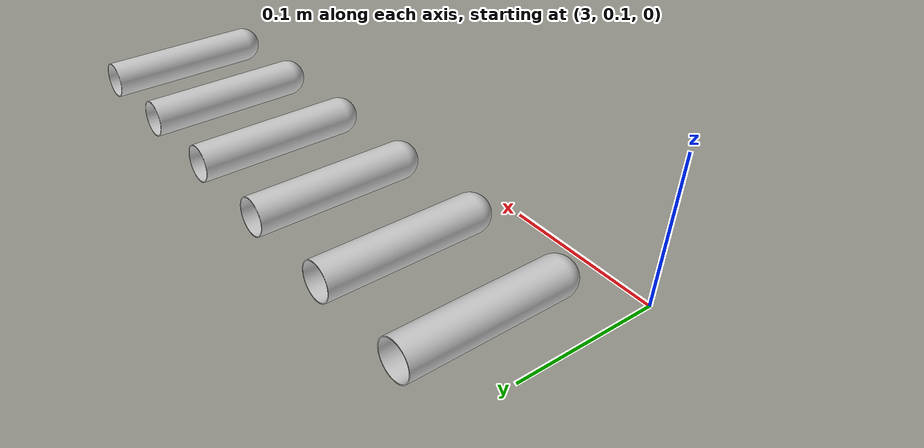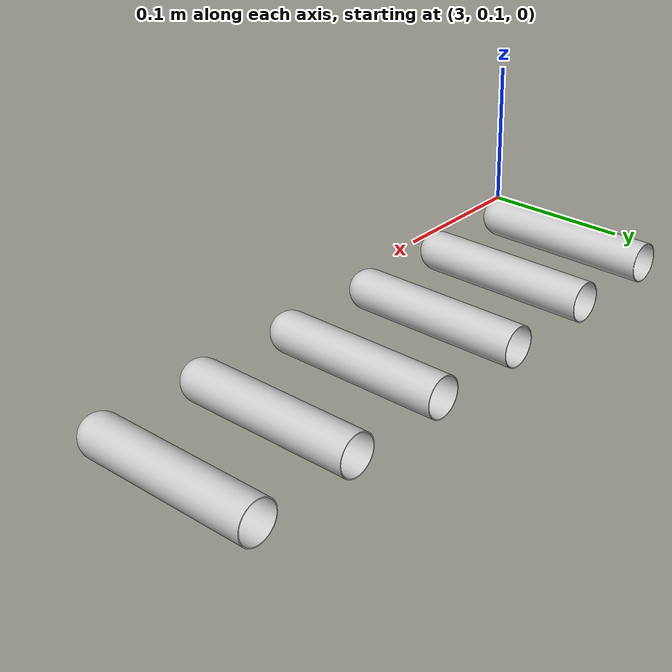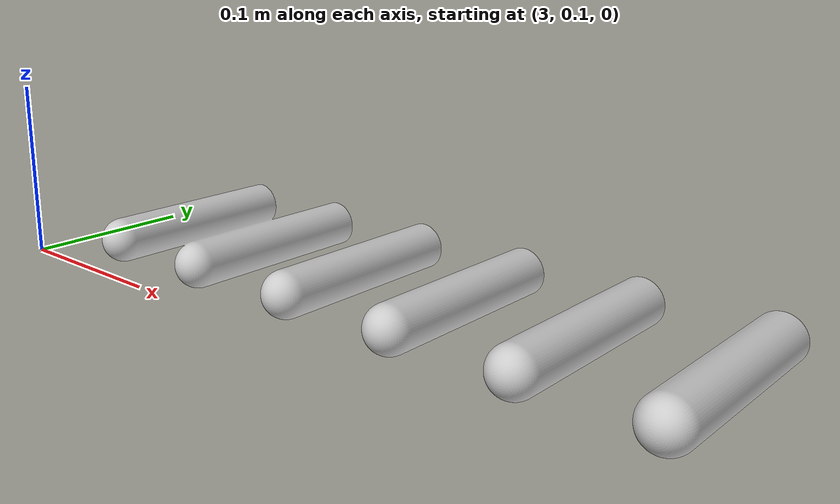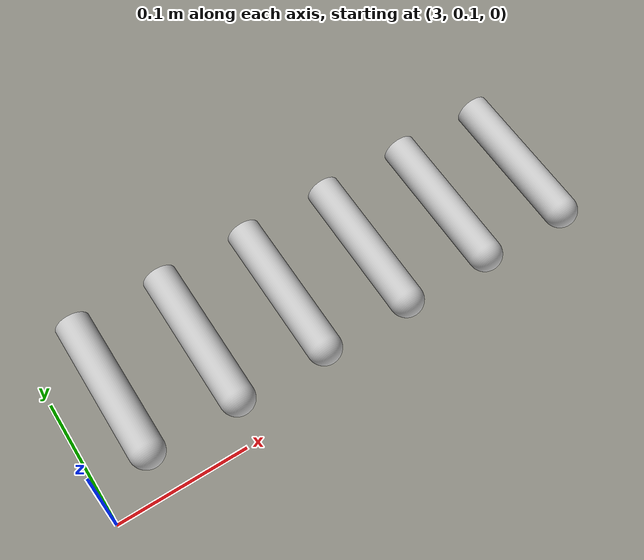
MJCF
<mujoco model="tubes_2">
  <default>
    <default class="visual">
      <geom group="2" type="mesh" contype="0" conaffinity="0"/>
    </default>
    <default class="collision">
      <geom group="3" type="mesh"/>
    </default>
  </default>
  <asset>
    <material name="2" specular="0.5" shininess="0.36" rgba="0.800000 0.800000 0.800000 1.000000"/>
    <material name="Material" specular="0.5" shininess="0.25" rgba="0.800000 0.800000 0.800000 1.000000"/>
    <mesh file="tubes_2_0.obj"/>
    <mesh file="tubes_2_1.obj"/>
    <mesh file="tubes_2_collision_0.obj"/>
    <mesh file="tubes_2_collision_1.obj"/>
    <mesh file="tubes_2_collision_2.obj"/>
    <mesh file="tubes_2_collision_3.obj"/>
    <mesh file="tubes_2_collision_4.obj"/>
    <mesh file="tubes_2_collision_5.obj"/>
    <mesh file="tubes_2_collision_6.obj"/>
    <mesh file="tubes_2_collision_7.obj"/>
  </asset>
  <worldbody>
    <body name="tubes_2">
      <geom mesh="tubes_2_0" material="2" class="visual"/>
      <geom mesh="tubes_2_1" material="Material" class="visual"/>
      <geom mesh="tubes_2_collision_0" rgba="0.5498164369472823 0.21092774322294128 0.22607996720743329 1" class="collision"/>
      <geom mesh="tubes_2_collision_1" rgba="0.18494142163356786 0.7309218285183926 0.09868089172715588 1" class="collision"/>
      <geom mesh="tubes_2_collision_2" rgba="0.5803662438821857 0.6104122389264668 0.38176086064977777 1" class="collision"/>
      <geom mesh="tubes_2_collision_3" rgba="0.5649806820439509 0.215938129048581 0.8517478302454535 1" class="collision"/>
      <geom mesh="tubes_2_collision_4" rgba="0.834421998431038 0.8853445235876439 0.0038815879173467183 1" class="collision"/>
      <geom mesh="tubes_2_collision_5" rgba="0.6909887326287026 0.01270425259675001 0.1593451789186876 1" class="collision"/>
      <geom mesh="tubes_2_collision_6" rgba="0.39318896401087455 0.260980095388619 0.5028237014230512 1" class="collision"/>
      <geom mesh="tubes_2_collision_7" rgba="0.8390065354371969 0.17954858922739603 0.2959988532331994 1" class="collision"/>
    </body>
  </worldbody>
</mujoco>
